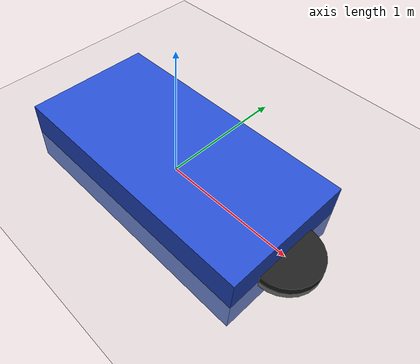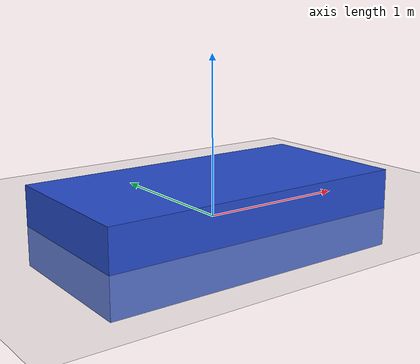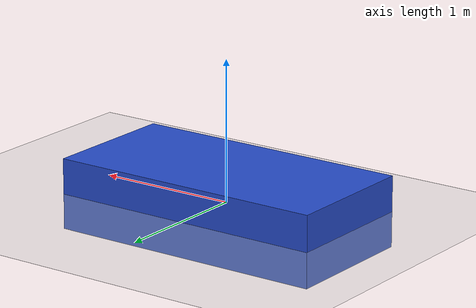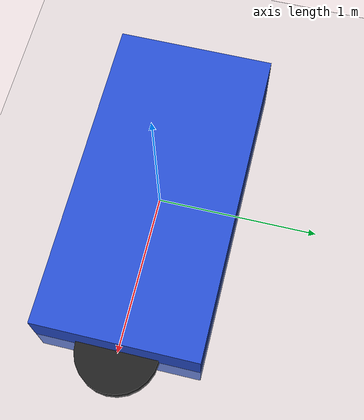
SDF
<?xml version="1.0" ?>
<sdf version="1.6">
  <world name="car_world">
    <include>
      <uri>model://ground_plane</uri>
    </include>
    <model name="car">
      <pose>0 0 0 0 0 0</pose>
      <static>false</static>
      <link name="base_link">
        <visual name="visual">
          <geometry>
            <box>
              <size>2 1 0.5</size>
            </box>
          </geometry>
          <material>
            <script>
              <uri>file://media/materials/scripts/gazebo.material</uri>
              <name>Gazebo/Blue</name>
            </script>
          </material>
        </visual>
        <collision name="collision">
          <geometry>
            <box>
              <size>2 1 0.5</size>
            </box>
          </geometry>
        </collision>
      </link>

      <!-- Add a joint for the wheel -->
      <joint name="wheel_joint" type="continuous">
        <parent>base_link</parent>
        <child>wheel_link</child>
        <axis>
          <xyz>0 0 1</xyz>
        </axis>
      </joint>

      <link name="wheel_link">
        <pose>1 0 0 0 0 0</pose>
        <collision name="wheel_collision">
          <geometry>
            <cylinder>
              <radius>0.25</radius>
              <length>0.1</length>
            </cylinder>
          </geometry>
        </collision>
        <visual name="wheel_visual">
          <geometry>
            <cylinder>
              <radius>0.25</radius>
              <length>0.1</length>
            </cylinder>
          </geometry>
          <material>
            <script>
              <uri>file://media/materials/scripts/gazebo.material</uri>
              <name>Gazebo/Black</name>
            </script>
          </material>
        </visual>
      </link>
    </model>
  </world>
</sdf>
